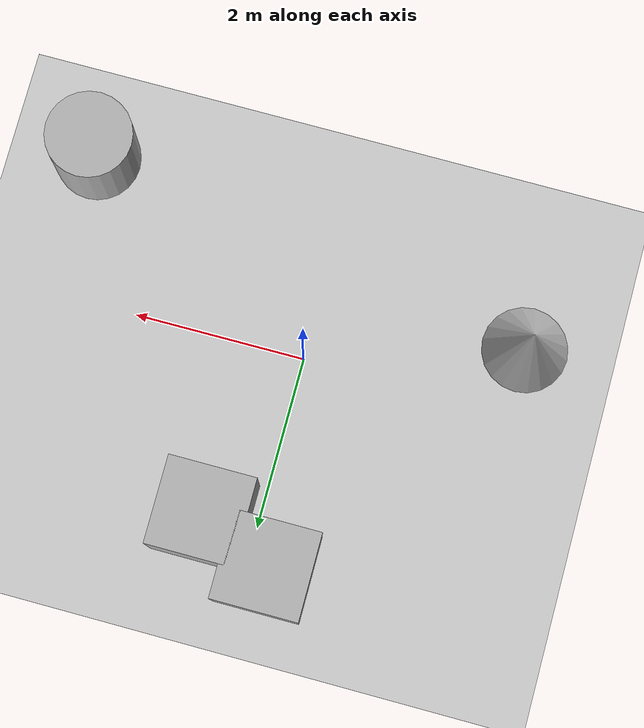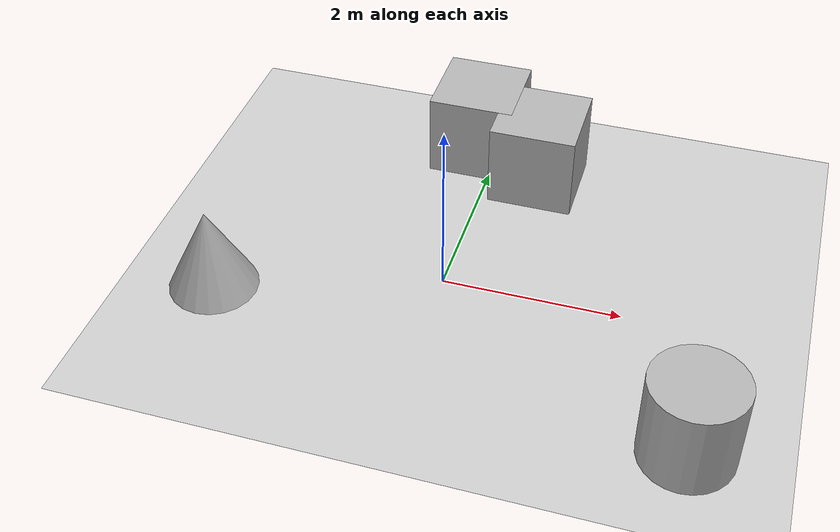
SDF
<sdf version='1.10'>
  <world name='empty'>
    <physics name='1ms' type='ignored'>
      <max_step_size>0.001</max_step_size>
      <real_time_factor>1</real_time_factor>
      <real_time_update_rate>1000</real_time_update_rate>
    </physics>
    <plugin name='gz::sim::systems::Physics' filename='gz-sim-physics-system'/>
    <plugin name='gz::sim::systems::UserCommands' filename='gz-sim-user-commands-system'/>
    <plugin name='gz::sim::systems::SceneBroadcaster' filename='gz-sim-scene-broadcaster-system'/>
    <plugin
      filename='gz-sim-sensors-system'
    name='gz::sim::systems::Sensors'>
    <render_engine>ogre2</render_engine>
</plugin>

<plugin name='gz::sim::systems::Contact' filename='gz-sim-contact-system'/>

    <gravity>0 0 -9.8000000000000007</gravity>
    <magnetic_field>5.5644999999999998e-06 2.2875799999999999e-05 -4.2388400000000002e-05</magnetic_field>
    <atmosphere type='adiabatic'/>
    <scene>
      <ambient>0.400000006 0.400000006 0.400000006 1</ambient>
      <background>0.699999988 0.699999988 0.699999988 1</background>
      <shadows>true</shadows>
    </scene>
    <model name='ground_plane'>
      <static>true</static>
      <link name='link'>
        <collision name='collision'>
          <geometry>
            <plane>
              <normal>0 0 1</normal>
              <size>100 100</size>
            </plane>
          </geometry>
          <surface>
            <friction>
              <ode/>
            </friction>
            <bounce/>
            <contact/>
          </surface>
        </collision>
        <visual name='visual'>
          <geometry>
            <plane>
              <normal>0 0 1</normal>
              <size>100 100</size>
            </plane>
          </geometry>
          <material>
            <ambient>0.800000012 0.800000012 0.800000012 1</ambient>
            <diffuse>0.800000012 0.800000012 0.800000012 1</diffuse>
            <specular>0.800000012 0.800000012 0.800000012 1</specular>
          </material>
        </visual>
        <pose>0 0 0 0 0 0</pose>
        <inertial>
          <pose>0 0 0 0 0 0</pose>
          <mass>1</mass>
          <inertia>
            <ixx>1</ixx>
            <ixy>0</ixy>
            <ixz>0</ixz>
            <iyy>1</iyy>
            <iyz>0</iyz>
            <izz>1</izz>
          </inertia>
        </inertial>
        <enable_wind>false</enable_wind>
      </link>
      <pose>0 0 0 0 0 0</pose>
      <self_collide>false</self_collide>
    </model>
    <model name='box'>
      <pose>0.59683469481473606 2.0342790111305451 0.49999999019994013 9.0160605531308192e-13 1.9599694328218297e-08 -3.9297540149924299e-06</pose>
      <link name='box_link'>
        <inertial>
          <inertia>
            <ixx>0.16666</ixx>
            <ixy>0</ixy>
            <ixz>0</ixz>
            <iyy>0.16666</iyy>
            <iyz>0</iyz>
            <izz>0.16666</izz>
          </inertia>
          <mass>1</mass>
          <pose>0 0 0 0 0 0</pose>
        </inertial>
        <collision name='box_collision'>
          <geometry>
            <box>
              <size>1 1 1</size>
            </box>
          </geometry>
          <surface>
            <friction>
              <ode/>
            </friction>
            <bounce/>
            <contact/>
          </surface>
        </collision>
        <visual name='box_visual'>
          <geometry>
            <box>
              <size>1 1 1</size>
            </box>
          </geometry>
          <material>
            <ambient>0.300000012 0.300000012 0.300000012 1</ambient>
            <diffuse>0.699999988 0.699999988 0.699999988 1</diffuse>
            <specular>1 1 1 1</specular>
          </material>
        </visual>
        <pose>0 0 0 0 0 0</pose>
        <enable_wind>false</enable_wind>
      </link>
      <static>false</static>
      <self_collide>false</self_collide>
    </model>
    <model name='cone'>
      <pose>-2.4239745779325585 -0.77638091774816576 0.49999999993296756 5.2548544155140844e-17 -7.7132841038066057e-10 -1.848369177196814e-23</pose>
      <link name='cone_link'>
        <inertial>
          <inertia>
            <ixx>0.074999999999999997</ixx>
            <ixy>0</ixy>
            <ixz>0</ixz>
            <iyy>0.074999999999999997</iyy>
            <iyz>0</iyz>
            <izz>0.074999999999999997</izz>
          </inertia>
          <mass>1</mass>
          <pose>0 0 0 0 0 0</pose>
        </inertial>
        <collision name='cone_collision'>
          <geometry>
            <cone>
              <radius>0.5</radius>
              <length>1</length>
            </cone>
          </geometry>
          <surface>
            <friction>
              <ode/>
            </friction>
            <bounce/>
            <contact/>
          </surface>
        </collision>
        <visual name='cone_visual'>
          <geometry>
            <cone>
              <radius>0.5</radius>
              <length>1</length>
            </cone>
          </geometry>
          <material>
            <ambient>0.300000012 0.300000012 0.300000012 1</ambient>
            <diffuse>0.699999988 0.699999988 0.699999988 1</diffuse>
            <specular>1 1 1 1</specular>
          </material>
        </visual>
        <pose>0 0 0 0 0 0</pose>
        <enable_wind>false</enable_wind>
      </link>
      <static>false</static>
      <self_collide>false</self_collide>
    </model>
    <model name='cylinder'>
      <pose>2.9429820622468927 -1.6796874806084696 0.49999942638036005 -4.9870124606070437e-20 1.2141282358281104e-19 1.4671111342508256e-20</pose>
      <link name='cylinder_link'>
        <inertial>
          <inertia>
            <ixx>0.14580000000000001</ixx>
            <ixy>0</ixy>
            <ixz>0</ixz>
            <iyy>0.14580000000000001</iyy>
            <iyz>0</iyz>
            <izz>0.125</izz>
          </inertia>
          <mass>1</mass>
          <pose>0 0 0 0 0 0</pose>
        </inertial>
        <collision name='cylinder_collision'>
          <geometry>
            <cylinder>
              <radius>0.5</radius>
              <length>1</length>
            </cylinder>
          </geometry>
          <surface>
            <friction>
              <ode/>
            </friction>
            <bounce/>
            <contact/>
          </surface>
        </collision>
        <visual name='cylinder_visual'>
          <geometry>
            <cylinder>
              <radius>0.5</radius>
              <length>1</length>
            </cylinder>
          </geometry>
          <material>
            <ambient>0.300000012 0.300000012 0.300000012 1</ambient>
            <diffuse>0.699999988 0.699999988 0.699999988 1</diffuse>
            <specular>1 1 1 1</specular>
          </material>
        </visual>
        <pose>0 0 0 0 0 0</pose>
        <enable_wind>false</enable_wind>
      </link>
      <static>false</static>
      <self_collide>false</self_collide>
    </model>
    <model name='box_0'>
      <pose>-0.23821037327509897 2.4181633216138221 0.4999999901996246 -6.8196830194789574e-13 -1.9598927180525729e-08 -3.498059205133803e-06</pose>
      <link name='box_link'>
        <inertial>
          <inertia>
            <ixx>0.16666</ixx>
            <ixy>0</ixy>
            <ixz>0</ixz>
            <iyy>0.16666</iyy>
            <iyz>0</iyz>
            <izz>0.16666</izz>
          </inertia>
          <mass>1</mass>
          <pose>0 0 0 0 0 0</pose>
        </inertial>
        <collision name='box_collision'>
          <geometry>
            <box>
              <size>1 1 1</size>
            </box>
          </geometry>
          <surface>
            <friction>
              <ode/>
            </friction>
            <bounce/>
            <contact/>
          </surface>
        </collision>
        <visual name='box_visual'>
          <geometry>
            <box>
              <size>1 1 1</size>
            </box>
          </geometry>
          <material>
            <ambient>0.300000012 0.300000012 0.300000012 1</ambient>
            <diffuse>0.699999988 0.699999988 0.699999988 1</diffuse>
            <specular>1 1 1 1</specular>
          </material>
        </visual>
        <pose>0 0 0 0 0 0</pose>
        <enable_wind>false</enable_wind>
      </link>
      <static>false</static>
      <self_collide>false</self_collide>
    </model>
    <light name='sun' type='directional'>
      <pose>0 0 10 0 0 0</pose>
      <cast_shadows>true</cast_shadows>
      <intensity>1</intensity>
      <direction>-0.5 0.10000000000000001 -0.90000000000000002</direction>
      <diffuse>0.800000012 0.800000012 0.800000012 1</diffuse>
      <specular>0.200000003 0.200000003 0.200000003 1</specular>
      <attenuation>
        <range>1000</range>
        <linear>0.01</linear>
        <constant>0.90000000000000002</constant>
        <quadratic>0.001</quadratic>
      </attenuation>
      <spot>
        <inner_angle>0</inner_angle>
        <outer_angle>0</outer_angle>
        <falloff>0</falloff>
      </spot>
    </light>
  </world>
</sdf>
